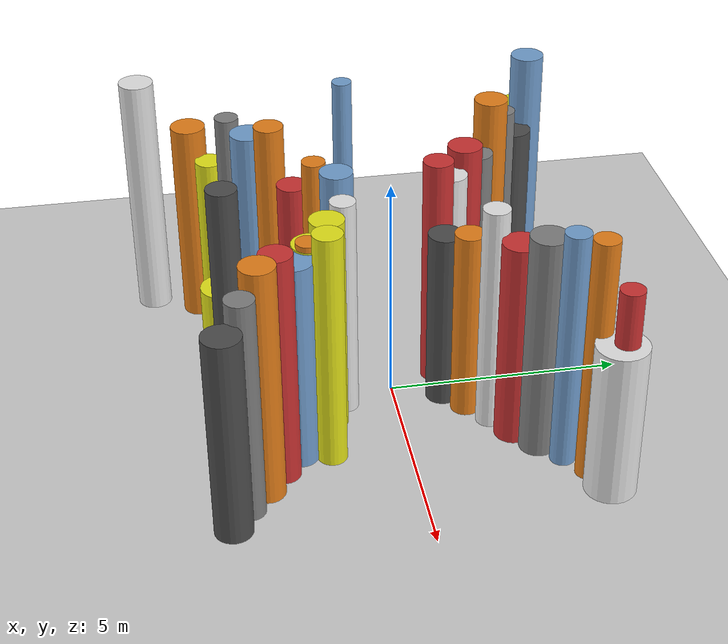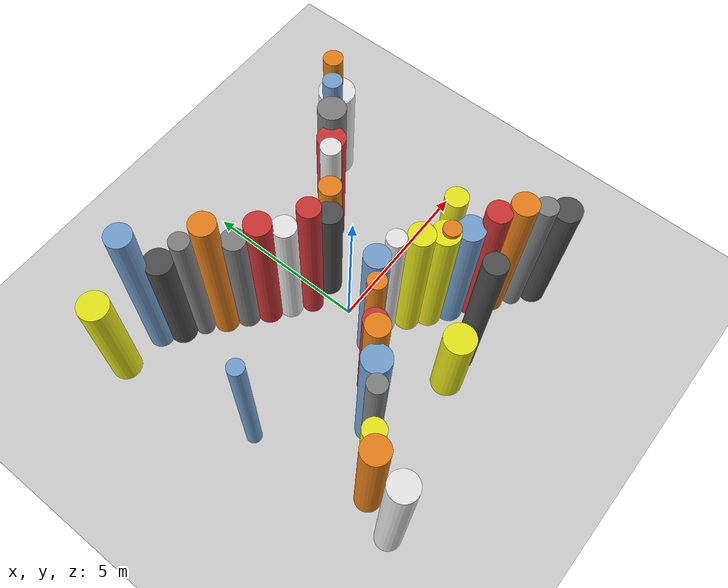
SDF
<?xml version='1.0'?>
<sdf version='1.6'>
  <world name='routeA_rl_v1__dense_recovery__rl_train__bottleneck_corridor__000025'>
    <!-- Sun light -->
    <light name='sun' type='directional'>
      <cast_shadows>1</cast_shadows>
      <pose>0 0 10 0 0 0</pose>
      <diffuse>0.8 0.8 0.8 1</diffuse>
      <specular>0.2 0.2 0.2 1</specular>
      <attenuation>
        <range>1000</range>
        <constant>0.9</constant>
        <linear>0.01</linear>
        <quadratic>0.001</quadratic>
      </attenuation>
      <direction>-0.5 0.1 -0.9</direction>
    </light>

    <!-- Ground plane -->
    <model name='ground_plane'>
      <static>1</static>
      <link name='link'>
        <collision name='collision'>
          <geometry>
            <plane>
              <normal>0 0 1</normal>
              <size>100 100</size>
            </plane>
          </geometry>
          <surface>
            <contact>
              <collide_bitmask>65535</collide_bitmask>
              <ode/>
            </contact>
            <friction>
              <ode>
                <mu>100</mu>
                <mu2>50</mu2>
              </ode>
              <torsional><ode/></torsional>
            </friction>
            <bounce/>
          </surface>
          <max_contacts>10</max_contacts>
        </collision>
        <visual name='visual'>
          <cast_shadows>0</cast_shadows>
          <geometry>
            <plane>
              <normal>0 0 1</normal>
              <size>100 100</size>
            </plane>
          </geometry>
          <material>
            <script>
              <uri>file://media/materials/scripts/gazebo.material</uri>
              <n>Gazebo/Grey</n>
            </script>
          </material>
        </visual>
      </link>
    </model>

    <!-- Environment -->
    <magnetic_field>6e-06 2.3e-05 -4.2e-05</magnetic_field>
    <atmosphere type='adiabatic'/>
    <physics name='default_physics' default='0' type='ode'>
      <gravity>0 0 -9.8</gravity>
      <max_step_size>0.004</max_step_size>
      <real_time_factor>1</real_time_factor>
      <real_time_update_rate>250</real_time_update_rate>
    </physics>
    <scene>
      <ambient>0.4 0.4 0.4 1</ambient>
      <background>0.7 0.7 0.7 1</background>
      <shadows>1</shadows>
    </scene>
    <wind/>
    <spherical_coordinates>
      <surface_model>EARTH_WGS84</surface_model>
      <latitude_deg>0</latitude_deg>
      <longitude_deg>0</longitude_deg>
      <elevation>0</elevation>
      <heading_deg>0</heading_deg>
    </spherical_coordinates>

    <!-- ============ OBSTACLES (40) ============ -->
    <model name='funnel_l_0'>
      <static>1</static>
      <link name='link'>
        <visual name='visual'>
          <geometry>
            <cylinder>
              <radius>0.3790</radius>
              <length>4.6965</length>
            </cylinder>
          </geometry>
          <material>
            <script>
              <n>Gazebo/Orange</n>
              <uri>file://media/materials/scripts/gazebo.material</uri>
            </script>
            <ambient>0.9 0.5 0.1 1</ambient>
          </material>
        </visual>
        <collision name='collision'>
          <geometry>
            <cylinder>
              <radius>0.3790</radius>
              <length>4.6965</length>
            </cylinder>
          </geometry>
          <max_contacts>10</max_contacts>
          <surface>
            <contact><ode/></contact>
            <bounce/>
            <friction>
              <ode><mu>1</mu><mu2>1</mu2></ode>
              <torsional><ode/></torsional>
            </friction>
          </surface>
        </collision>
      </link>
      <pose>-4.0000 -3.8000 2.3482 0 0 0.0000</pose>
    </model>

    <model name='funnel_r_0'>
      <static>1</static>
      <link name='link'>
        <visual name='visual'>
          <geometry>
            <cylinder>
              <radius>0.3585</radius>
              <length>5.7826</length>
            </cylinder>
          </geometry>
          <material>
            <script>
              <n>Gazebo/Blue</n>
              <uri>file://media/materials/scripts/gazebo.material</uri>
            </script>
            <ambient>0.447 0.624 0.812 1</ambient>
          </material>
        </visual>
        <collision name='collision'>
          <geometry>
            <cylinder>
              <radius>0.3585</radius>
              <length>5.7826</length>
            </cylinder>
          </geometry>
          <max_contacts>10</max_contacts>
          <surface>
            <contact><ode/></contact>
            <bounce/>
            <friction>
              <ode><mu>1</mu><mu2>1</mu2></ode>
              <torsional><ode/></torsional>
            </friction>
          </surface>
        </collision>
      </link>
      <pose>-4.0000 3.8000 2.8913 0 0 0.0000</pose>
    </model>

    <model name='funnel_l_1'>
      <static>1</static>
      <link name='link'>
        <visual name='visual'>
          <geometry>
            <cylinder>
              <radius>0.3134</radius>
              <length>4.0814</length>
            </cylinder>
          </geometry>
          <material>
            <script>
              <n>Gazebo/Yellow</n>
              <uri>file://media/materials/scripts/gazebo.material</uri>
            </script>
            <ambient>0.9 0.9 0.1 1</ambient>
          </material>
        </visual>
        <collision name='collision'>
          <geometry>
            <cylinder>
              <radius>0.3134</radius>
              <length>4.0814</length>
            </cylinder>
          </geometry>
          <max_contacts>10</max_contacts>
          <surface>
            <contact><ode/></contact>
            <bounce/>
            <friction>
              <ode><mu>1</mu><mu2>1</mu2></ode>
              <torsional><ode/></torsional>
            </friction>
          </surface>
        </collision>
      </link>
      <pose>-3.4857 -3.4071 2.0407 0 0 0.0000</pose>
    </model>

    <model name='funnel_r_1'>
      <static>1</static>
      <link name='link'>
        <visual name='visual'>
          <geometry>
            <cylinder>
              <radius>0.3964</radius>
              <length>4.2310</length>
            </cylinder>
          </geometry>
          <material>
            <script>
              <n>Gazebo/DarkGrey</n>
              <uri>file://media/materials/scripts/gazebo.material</uri>
            </script>
            <ambient>0.3 0.3 0.3 1</ambient>
          </material>
        </visual>
        <collision name='collision'>
          <geometry>
            <cylinder>
              <radius>0.3964</radius>
              <length>4.2310</length>
            </cylinder>
          </geometry>
          <max_contacts>10</max_contacts>
          <surface>
            <contact><ode/></contact>
            <bounce/>
            <friction>
              <ode><mu>1</mu><mu2>1</mu2></ode>
              <torsional><ode/></torsional>
            </friction>
          </surface>
        </collision>
      </link>
      <pose>-3.4857 3.4071 2.1155 0 0 0.0000</pose>
    </model>

    <model name='funnel_l_2'>
      <static>1</static>
      <link name='link'>
        <visual name='visual'>
          <geometry>
            <cylinder>
              <radius>0.2540</radius>
              <length>5.3470</length>
            </cylinder>
          </geometry>
          <material>
            <script>
              <n>Gazebo/Grey</n>
              <uri>file://media/materials/scripts/gazebo.material</uri>
            </script>
            <ambient>0.5 0.5 0.5 1</ambient>
          </material>
        </visual>
        <collision name='collision'>
          <geometry>
            <cylinder>
              <radius>0.2540</radius>
              <length>5.3470</length>
            </cylinder>
          </geometry>
          <max_contacts>10</max_contacts>
          <surface>
            <contact><ode/></contact>
            <bounce/>
            <friction>
              <ode><mu>1</mu><mu2>1</mu2></ode>
              <torsional><ode/></torsional>
            </friction>
          </surface>
        </collision>
      </link>
      <pose>-2.9714 -3.0143 2.6735 0 0 0.0000</pose>
    </model>

    <model name='funnel_r_2'>
      <static>1</static>
      <link name='link'>
        <visual name='visual'>
          <geometry>
            <cylinder>
              <radius>0.2756</radius>
              <length>4.9847</length>
            </cylinder>
          </geometry>
          <material>
            <script>
              <n>Gazebo/Grey</n>
              <uri>file://media/materials/scripts/gazebo.material</uri>
            </script>
            <ambient>0.5 0.5 0.5 1</ambient>
          </material>
        </visual>
        <collision name='collision'>
          <geometry>
            <cylinder>
              <radius>0.2756</radius>
              <length>4.9847</length>
            </cylinder>
          </geometry>
          <max_contacts>10</max_contacts>
          <surface>
            <contact><ode/></contact>
            <bounce/>
            <friction>
              <ode><mu>1</mu><mu2>1</mu2></ode>
              <torsional><ode/></torsional>
            </friction>
          </surface>
        </collision>
      </link>
      <pose>-2.9714 3.0143 2.4923 0 0 0.0000</pose>
    </model>

    <model name='funnel_l_3'>
      <static>1</static>
      <link name='link'>
        <visual name='visual'>
          <geometry>
            <cylinder>
              <radius>0.3832</radius>
              <length>5.2040</length>
            </cylinder>
          </geometry>
          <material>
            <script>
              <n>Gazebo/Blue</n>
              <uri>file://media/materials/scripts/gazebo.material</uri>
            </script>
            <ambient>0.447 0.624 0.812 1</ambient>
          </material>
        </visual>
        <collision name='collision'>
          <geometry>
            <cylinder>
              <radius>0.3832</radius>
              <length>5.2040</length>
            </cylinder>
          </geometry>
          <max_contacts>10</max_contacts>
          <surface>
            <contact><ode/></contact>
            <bounce/>
            <friction>
              <ode><mu>1</mu><mu2>1</mu2></ode>
              <torsional><ode/></torsional>
            </friction>
          </surface>
        </collision>
      </link>
      <pose>-2.4571 -2.6214 2.6020 0 0 0.0000</pose>
    </model>

    <model name='funnel_r_3'>
      <static>1</static>
      <link name='link'>
        <visual name='visual'>
          <geometry>
            <cylinder>
              <radius>0.3593</radius>
              <length>5.5386</length>
            </cylinder>
          </geometry>
          <material>
            <script>
              <n>Gazebo/Orange</n>
              <uri>file://media/materials/scripts/gazebo.material</uri>
            </script>
            <ambient>0.9 0.5 0.1 1</ambient>
          </material>
        </visual>
        <collision name='collision'>
          <geometry>
            <cylinder>
              <radius>0.3593</radius>
              <length>5.5386</length>
            </cylinder>
          </geometry>
          <max_contacts>10</max_contacts>
          <surface>
            <contact><ode/></contact>
            <bounce/>
            <friction>
              <ode><mu>1</mu><mu2>1</mu2></ode>
              <torsional><ode/></torsional>
            </friction>
          </surface>
        </collision>
      </link>
      <pose>-2.4571 2.6214 2.7693 0 0 0.0000</pose>
    </model>

    <model name='funnel_l_4'>
      <static>1</static>
      <link name='link'>
        <visual name='visual'>
          <geometry>
            <cylinder>
              <radius>0.3141</radius>
              <length>5.5861</length>
            </cylinder>
          </geometry>
          <material>
            <script>
              <n>Gazebo/Orange</n>
              <uri>file://media/materials/scripts/gazebo.material</uri>
            </script>
            <ambient>0.9 0.5 0.1 1</ambient>
          </material>
        </visual>
        <collision name='collision'>
          <geometry>
            <cylinder>
              <radius>0.3141</radius>
              <length>5.5861</length>
            </cylinder>
          </geometry>
          <max_contacts>10</max_contacts>
          <surface>
            <contact><ode/></contact>
            <bounce/>
            <friction>
              <ode><mu>1</mu><mu2>1</mu2></ode>
              <torsional><ode/></torsional>
            </friction>
          </surface>
        </collision>
      </link>
      <pose>-1.9429 -2.2286 2.7931 0 0 0.0000</pose>
    </model>

    <model name='funnel_r_4'>
      <static>1</static>
      <link name='link'>
        <visual name='visual'>
          <geometry>
            <cylinder>
              <radius>0.3397</radius>
              <length>4.5442</length>
            </cylinder>
          </geometry>
          <material>
            <script>
              <n>Gazebo/Grey</n>
              <uri>file://media/materials/scripts/gazebo.material</uri>
            </script>
            <ambient>0.5 0.5 0.5 1</ambient>
          </material>
        </visual>
        <collision name='collision'>
          <geometry>
            <cylinder>
              <radius>0.3397</radius>
              <length>4.5442</length>
            </cylinder>
          </geometry>
          <max_contacts>10</max_contacts>
          <surface>
            <contact><ode/></contact>
            <bounce/>
            <friction>
              <ode><mu>1</mu><mu2>1</mu2></ode>
              <torsional><ode/></torsional>
            </friction>
          </surface>
        </collision>
      </link>
      <pose>-1.9429 2.2286 2.2721 0 0 0.0000</pose>
    </model>

    <model name='funnel_l_5'>
      <static>1</static>
      <link name='link'>
        <visual name='visual'>
          <geometry>
            <cylinder>
              <radius>0.3288</radius>
              <length>4.4552</length>
            </cylinder>
          </geometry>
          <material>
            <script>
              <n>Gazebo/Red</n>
              <uri>file://media/materials/scripts/gazebo.material</uri>
            </script>
            <ambient>0.8 0.2 0.2 1</ambient>
          </material>
        </visual>
        <collision name='collision'>
          <geometry>
            <cylinder>
              <radius>0.3288</radius>
              <length>4.4552</length>
            </cylinder>
          </geometry>
          <max_contacts>10</max_contacts>
          <surface>
            <contact><ode/></contact>
            <bounce/>
            <friction>
              <ode><mu>1</mu><mu2>1</mu2></ode>
              <torsional><ode/></torsional>
            </friction>
          </surface>
        </collision>
      </link>
      <pose>-1.4286 -1.8357 2.2276 0 0 0.0000</pose>
    </model>

    <model name='funnel_r_5'>
      <static>1</static>
      <link name='link'>
        <visual name='visual'>
          <geometry>
            <cylinder>
              <radius>0.3689</radius>
              <length>5.0303</length>
            </cylinder>
          </geometry>
          <material>
            <script>
              <n>Gazebo/Red</n>
              <uri>file://media/materials/scripts/gazebo.material</uri>
            </script>
            <ambient>0.8 0.2 0.2 1</ambient>
          </material>
        </visual>
        <collision name='collision'>
          <geometry>
            <cylinder>
              <radius>0.3689</radius>
              <length>5.0303</length>
            </cylinder>
          </geometry>
          <max_contacts>10</max_contacts>
          <surface>
            <contact><ode/></contact>
            <bounce/>
            <friction>
              <ode><mu>1</mu><mu2>1</mu2></ode>
              <torsional><ode/></torsional>
            </friction>
          </surface>
        </collision>
      </link>
      <pose>-1.4286 1.8357 2.5151 0 0 0.0000</pose>
    </model>

    <model name='funnel_l_6'>
      <static>1</static>
      <link name='link'>
        <visual name='visual'>
          <geometry>
            <cylinder>
              <radius>0.2504</radius>
              <length>5.2274</length>
            </cylinder>
          </geometry>
          <material>
            <script>
              <n>Gazebo/Orange</n>
              <uri>file://media/materials/scripts/gazebo.material</uri>
            </script>
            <ambient>0.9 0.5 0.1 1</ambient>
          </material>
        </visual>
        <collision name='collision'>
          <geometry>
            <cylinder>
              <radius>0.2504</radius>
              <length>5.2274</length>
            </cylinder>
          </geometry>
          <max_contacts>10</max_contacts>
          <surface>
            <contact><ode/></contact>
            <bounce/>
            <friction>
              <ode><mu>1</mu><mu2>1</mu2></ode>
              <torsional><ode/></torsional>
            </friction>
          </surface>
        </collision>
      </link>
      <pose>-0.9143 -1.4429 2.6137 0 0 0.0000</pose>
    </model>

    <model name='funnel_r_6'>
      <static>1</static>
      <link name='link'>
        <visual name='visual'>
          <geometry>
            <cylinder>
              <radius>0.3382</radius>
              <length>4.6506</length>
            </cylinder>
          </geometry>
          <material>
            <script>
              <n>Gazebo/White</n>
              <uri>file://media/materials/scripts/gazebo.material</uri>
            </script>
            <ambient>0.9 0.9 0.9 1</ambient>
          </material>
        </visual>
        <collision name='collision'>
          <geometry>
            <cylinder>
              <radius>0.3382</radius>
              <length>4.6506</length>
            </cylinder>
          </geometry>
          <max_contacts>10</max_contacts>
          <surface>
            <contact><ode/></contact>
            <bounce/>
            <friction>
              <ode><mu>1</mu><mu2>1</mu2></ode>
              <torsional><ode/></torsional>
            </friction>
          </surface>
        </collision>
      </link>
      <pose>-0.9143 1.4429 2.3253 0 0 0.0000</pose>
    </model>

    <model name='funnel_l_7'>
      <static>1</static>
      <link name='link'>
        <visual name='visual'>
          <geometry>
            <cylinder>
              <radius>0.3472</radius>
              <length>5.2348</length>
            </cylinder>
          </geometry>
          <material>
            <script>
              <n>Gazebo/Blue</n>
              <uri>file://media/materials/scripts/gazebo.material</uri>
            </script>
            <ambient>0.447 0.624 0.812 1</ambient>
          </material>
        </visual>
        <collision name='collision'>
          <geometry>
            <cylinder>
              <radius>0.3472</radius>
              <length>5.2348</length>
            </cylinder>
          </geometry>
          <max_contacts>10</max_contacts>
          <surface>
            <contact><ode/></contact>
            <bounce/>
            <friction>
              <ode><mu>1</mu><mu2>1</mu2></ode>
              <torsional><ode/></torsional>
            </friction>
          </surface>
        </collision>
      </link>
      <pose>-0.4000 -1.0500 2.6174 0 0 0.0000</pose>
    </model>

    <model name='funnel_r_7'>
      <static>1</static>
      <link name='link'>
        <visual name='visual'>
          <geometry>
            <cylinder>
              <radius>0.3179</radius>
              <length>5.2830</length>
            </cylinder>
          </geometry>
          <material>
            <script>
              <n>Gazebo/Red</n>
              <uri>file://media/materials/scripts/gazebo.material</uri>
            </script>
            <ambient>0.8 0.2 0.2 1</ambient>
          </material>
        </visual>
        <collision name='collision'>
          <geometry>
            <cylinder>
              <radius>0.3179</radius>
              <length>5.2830</length>
            </cylinder>
          </geometry>
          <max_contacts>10</max_contacts>
          <surface>
            <contact><ode/></contact>
            <bounce/>
            <friction>
              <ode><mu>1</mu><mu2>1</mu2></ode>
              <torsional><ode/></torsional>
            </friction>
          </surface>
        </collision>
      </link>
      <pose>-0.4000 1.0500 2.6415 0 0 0.0000</pose>
    </model>

    <model name='funnel_out_l_0'>
      <static>1</static>
      <link name='link'>
        <visual name='visual'>
          <geometry>
            <cylinder>
              <radius>0.2708</radius>
              <length>5.0003</length>
            </cylinder>
          </geometry>
          <material>
            <script>
              <n>Gazebo/White</n>
              <uri>file://media/materials/scripts/gazebo.material</uri>
            </script>
            <ambient>0.9 0.9 0.9 1</ambient>
          </material>
        </visual>
        <collision name='collision'>
          <geometry>
            <cylinder>
              <radius>0.2708</radius>
              <length>5.0003</length>
            </cylinder>
          </geometry>
          <max_contacts>10</max_contacts>
          <surface>
            <contact><ode/></contact>
            <bounce/>
            <friction>
              <ode><mu>1</mu><mu2>1</mu2></ode>
              <torsional><ode/></torsional>
            </friction>
          </surface>
        </collision>
      </link>
      <pose>0.4000 -1.0500 2.5002 0 0 0.0000</pose>
    </model>

    <model name='funnel_out_r_0'>
      <static>1</static>
      <link name='link'>
        <visual name='visual'>
          <geometry>
            <cylinder>
              <radius>0.3613</radius>
              <length>4.0342</length>
            </cylinder>
          </geometry>
          <material>
            <script>
              <n>Gazebo/DarkGrey</n>
              <uri>file://media/materials/scripts/gazebo.material</uri>
            </script>
            <ambient>0.3 0.3 0.3 1</ambient>
          </material>
        </visual>
        <collision name='collision'>
          <geometry>
            <cylinder>
              <radius>0.3613</radius>
              <length>4.0342</length>
            </cylinder>
          </geometry>
          <max_contacts>10</max_contacts>
          <surface>
            <contact><ode/></contact>
            <bounce/>
            <friction>
              <ode><mu>1</mu><mu2>1</mu2></ode>
              <torsional><ode/></torsional>
            </friction>
          </surface>
        </collision>
      </link>
      <pose>0.4000 1.0500 2.0171 0 0 0.0000</pose>
    </model>

    <model name='funnel_out_l_1'>
      <static>1</static>
      <link name='link'>
        <visual name='visual'>
          <geometry>
            <cylinder>
              <radius>0.3602</radius>
              <length>4.9245</length>
            </cylinder>
          </geometry>
          <material>
            <script>
              <n>Gazebo/Yellow</n>
              <uri>file://media/materials/scripts/gazebo.material</uri>
            </script>
            <ambient>0.9 0.9 0.1 1</ambient>
          </material>
        </visual>
        <collision name='collision'>
          <geometry>
            <cylinder>
              <radius>0.3602</radius>
              <length>4.9245</length>
            </cylinder>
          </geometry>
          <max_contacts>10</max_contacts>
          <surface>
            <contact><ode/></contact>
            <bounce/>
            <friction>
              <ode><mu>1</mu><mu2>1</mu2></ode>
              <torsional><ode/></torsional>
            </friction>
          </surface>
        </collision>
      </link>
      <pose>0.9143 -1.4429 2.4623 0 0 0.0000</pose>
    </model>

    <model name='funnel_out_r_1'>
      <static>1</static>
      <link name='link'>
        <visual name='visual'>
          <geometry>
            <cylinder>
              <radius>0.3187</radius>
              <length>4.3070</length>
            </cylinder>
          </geometry>
          <material>
            <script>
              <n>Gazebo/Orange</n>
              <uri>file://media/materials/scripts/gazebo.material</uri>
            </script>
            <ambient>0.9 0.5 0.1 1</ambient>
          </material>
        </visual>
        <collision name='collision'>
          <geometry>
            <cylinder>
              <radius>0.3187</radius>
              <length>4.3070</length>
            </cylinder>
          </geometry>
          <max_contacts>10</max_contacts>
          <surface>
            <contact><ode/></contact>
            <bounce/>
            <friction>
              <ode><mu>1</mu><mu2>1</mu2></ode>
              <torsional><ode/></torsional>
            </friction>
          </surface>
        </collision>
      </link>
      <pose>0.9143 1.4429 2.1535 0 0 0.0000</pose>
    </model>

    <model name='funnel_out_l_2'>
      <static>1</static>
      <link name='link'>
        <visual name='visual'>
          <geometry>
            <cylinder>
              <radius>0.3906</radius>
              <length>4.7263</length>
            </cylinder>
          </geometry>
          <material>
            <script>
              <n>Gazebo/Yellow</n>
              <uri>file://media/materials/scripts/gazebo.material</uri>
            </script>
            <ambient>0.9 0.9 0.1 1</ambient>
          </material>
        </visual>
        <collision name='collision'>
          <geometry>
            <cylinder>
              <radius>0.3906</radius>
              <length>4.7263</length>
            </cylinder>
          </geometry>
          <max_contacts>10</max_contacts>
          <surface>
            <contact><ode/></contact>
            <bounce/>
            <friction>
              <ode><mu>1</mu><mu2>1</mu2></ode>
              <torsional><ode/></torsional>
            </friction>
          </surface>
        </collision>
      </link>
      <pose>1.4286 -1.8357 2.3632 0 0 0.0000</pose>
    </model>

    <model name='funnel_out_r_2'>
      <static>1</static>
      <link name='link'>
        <visual name='visual'>
          <geometry>
            <cylinder>
              <radius>0.2837</radius>
              <length>5.1218</length>
            </cylinder>
          </geometry>
          <material>
            <script>
              <n>Gazebo/White</n>
              <uri>file://media/materials/scripts/gazebo.material</uri>
            </script>
            <ambient>0.9 0.9 0.9 1</ambient>
          </material>
        </visual>
        <collision name='collision'>
          <geometry>
            <cylinder>
              <radius>0.2837</radius>
              <length>5.1218</length>
            </cylinder>
          </geometry>
          <max_contacts>10</max_contacts>
          <surface>
            <contact><ode/></contact>
            <bounce/>
            <friction>
              <ode><mu>1</mu><mu2>1</mu2></ode>
              <torsional><ode/></torsional>
            </friction>
          </surface>
        </collision>
      </link>
      <pose>1.4286 1.8357 2.5609 0 0 0.0000</pose>
    </model>

    <model name='funnel_out_l_3'>
      <static>1</static>
      <link name='link'>
        <visual name='visual'>
          <geometry>
            <cylinder>
              <radius>0.3933</radius>
              <length>4.6881</length>
            </cylinder>
          </geometry>
          <material>
            <script>
              <n>Gazebo/Blue</n>
              <uri>file://media/materials/scripts/gazebo.material</uri>
            </script>
            <ambient>0.447 0.624 0.812 1</ambient>
          </material>
        </visual>
        <collision name='collision'>
          <geometry>
            <cylinder>
              <radius>0.3933</radius>
              <length>4.6881</length>
            </cylinder>
          </geometry>
          <max_contacts>10</max_contacts>
          <surface>
            <contact><ode/></contact>
            <bounce/>
            <friction>
              <ode><mu>1</mu><mu2>1</mu2></ode>
              <torsional><ode/></torsional>
            </friction>
          </surface>
        </collision>
      </link>
      <pose>1.9429 -2.2286 2.3441 0 0 0.0000</pose>
    </model>

    <model name='funnel_out_r_3'>
      <static>1</static>
      <link name='link'>
        <visual name='visual'>
          <geometry>
            <cylinder>
              <radius>0.3990</radius>
              <length>4.6229</length>
            </cylinder>
          </geometry>
          <material>
            <script>
              <n>Gazebo/Red</n>
              <uri>file://media/materials/scripts/gazebo.material</uri>
            </script>
            <ambient>0.8 0.2 0.2 1</ambient>
          </material>
        </visual>
        <collision name='collision'>
          <geometry>
            <cylinder>
              <radius>0.3990</radius>
              <length>4.6229</length>
            </cylinder>
          </geometry>
          <max_contacts>10</max_contacts>
          <surface>
            <contact><ode/></contact>
            <bounce/>
            <friction>
              <ode><mu>1</mu><mu2>1</mu2></ode>
              <torsional><ode/></torsional>
            </friction>
          </surface>
        </collision>
      </link>
      <pose>1.9429 2.2286 2.3114 0 0 0.0000</pose>
    </model>

    <model name='funnel_out_l_4'>
      <static>1</static>
      <link name='link'>
        <visual name='visual'>
          <geometry>
            <cylinder>
              <radius>0.3388</radius>
              <length>5.2022</length>
            </cylinder>
          </geometry>
          <material>
            <script>
              <n>Gazebo/Red</n>
              <uri>file://media/materials/scripts/gazebo.material</uri>
            </script>
            <ambient>0.8 0.2 0.2 1</ambient>
          </material>
        </visual>
        <collision name='collision'>
          <geometry>
            <cylinder>
              <radius>0.3388</radius>
              <length>5.2022</length>
            </cylinder>
          </geometry>
          <max_contacts>10</max_contacts>
          <surface>
            <contact><ode/></contact>
            <bounce/>
            <friction>
              <ode><mu>1</mu><mu2>1</mu2></ode>
              <torsional><ode/></torsional>
            </friction>
          </surface>
        </collision>
      </link>
      <pose>2.4571 -2.6214 2.6011 0 0 0.0000</pose>
    </model>

    <model name='funnel_out_r_4'>
      <static>1</static>
      <link name='link'>
        <visual name='visual'>
          <geometry>
            <cylinder>
              <radius>0.3915</radius>
              <length>5.0312</length>
            </cylinder>
          </geometry>
          <material>
            <script>
              <n>Gazebo/Grey</n>
              <uri>file://media/materials/scripts/gazebo.material</uri>
            </script>
            <ambient>0.5 0.5 0.5 1</ambient>
          </material>
        </visual>
        <collision name='collision'>
          <geometry>
            <cylinder>
              <radius>0.3915</radius>
              <length>5.0312</length>
            </cylinder>
          </geometry>
          <max_contacts>10</max_contacts>
          <surface>
            <contact><ode/></contact>
            <bounce/>
            <friction>
              <ode><mu>1</mu><mu2>1</mu2></ode>
              <torsional><ode/></torsional>
            </friction>
          </surface>
        </collision>
      </link>
      <pose>2.4571 2.6214 2.5156 0 0 0.0000</pose>
    </model>

    <model name='funnel_out_l_5'>
      <static>1</static>
      <link name='link'>
        <visual name='visual'>
          <geometry>
            <cylinder>
              <radius>0.3593</radius>
              <length>5.3063</length>
            </cylinder>
          </geometry>
          <material>
            <script>
              <n>Gazebo/Orange</n>
              <uri>file://media/materials/scripts/gazebo.material</uri>
            </script>
            <ambient>0.9 0.5 0.1 1</ambient>
          </material>
        </visual>
        <collision name='collision'>
          <geometry>
            <cylinder>
              <radius>0.3593</radius>
              <length>5.3063</length>
            </cylinder>
          </geometry>
          <max_contacts>10</max_contacts>
          <surface>
            <contact><ode/></contact>
            <bounce/>
            <friction>
              <ode><mu>1</mu><mu2>1</mu2></ode>
              <torsional><ode/></torsional>
            </friction>
          </surface>
        </collision>
      </link>
      <pose>2.9714 -3.0143 2.6531 0 0 0.0000</pose>
    </model>

    <model name='funnel_out_r_5'>
      <static>1</static>
      <link name='link'>
        <visual name='visual'>
          <geometry>
            <cylinder>
              <radius>0.2659</radius>
              <length>5.3602</length>
            </cylinder>
          </geometry>
          <material>
            <script>
              <n>Gazebo/Blue</n>
              <uri>file://media/materials/scripts/gazebo.material</uri>
            </script>
            <ambient>0.447 0.624 0.812 1</ambient>
          </material>
        </visual>
        <collision name='collision'>
          <geometry>
            <cylinder>
              <radius>0.2659</radius>
              <length>5.3602</length>
            </cylinder>
          </geometry>
          <max_contacts>10</max_contacts>
          <surface>
            <contact><ode/></contact>
            <bounce/>
            <friction>
              <ode><mu>1</mu><mu2>1</mu2></ode>
              <torsional><ode/></torsional>
            </friction>
          </surface>
        </collision>
      </link>
      <pose>2.9714 3.0143 2.6801 0 0 0.0000</pose>
    </model>

    <model name='funnel_out_l_6'>
      <static>1</static>
      <link name='link'>
        <visual name='visual'>
          <geometry>
            <cylinder>
              <radius>0.2968</radius>
              <length>4.9545</length>
            </cylinder>
          </geometry>
          <material>
            <script>
              <n>Gazebo/Grey</n>
              <uri>file://media/materials/scripts/gazebo.material</uri>
            </script>
            <ambient>0.5 0.5 0.5 1</ambient>
          </material>
        </visual>
        <collision name='collision'>
          <geometry>
            <cylinder>
              <radius>0.2968</radius>
              <length>4.9545</length>
            </cylinder>
          </geometry>
          <max_contacts>10</max_contacts>
          <surface>
            <contact><ode/></contact>
            <bounce/>
            <friction>
              <ode><mu>1</mu><mu2>1</mu2></ode>
              <torsional><ode/></torsional>
            </friction>
          </surface>
        </collision>
      </link>
      <pose>3.4857 -3.4071 2.4772 0 0 0.0000</pose>
    </model>

    <model name='funnel_out_r_6'>
      <static>1</static>
      <link name='link'>
        <visual name='visual'>
          <geometry>
            <cylinder>
              <radius>0.2692</radius>
              <length>5.4844</length>
            </cylinder>
          </geometry>
          <material>
            <script>
              <n>Gazebo/Orange</n>
              <uri>file://media/materials/scripts/gazebo.material</uri>
            </script>
            <ambient>0.9 0.5 0.1 1</ambient>
          </material>
        </visual>
        <collision name='collision'>
          <geometry>
            <cylinder>
              <radius>0.2692</radius>
              <length>5.4844</length>
            </cylinder>
          </geometry>
          <max_contacts>10</max_contacts>
          <surface>
            <contact><ode/></contact>
            <bounce/>
            <friction>
              <ode><mu>1</mu><mu2>1</mu2></ode>
              <torsional><ode/></torsional>
            </friction>
          </surface>
        </collision>
      </link>
      <pose>3.4857 3.4071 2.7422 0 0 0.0000</pose>
    </model>

    <model name='funnel_out_l_7'>
      <static>1</static>
      <link name='link'>
        <visual name='visual'>
          <geometry>
            <cylinder>
              <radius>0.3892</radius>
              <length>4.5451</length>
            </cylinder>
          </geometry>
          <material>
            <script>
              <n>Gazebo/DarkGrey</n>
              <uri>file://media/materials/scripts/gazebo.material</uri>
            </script>
            <ambient>0.3 0.3 0.3 1</ambient>
          </material>
        </visual>
        <collision name='collision'>
          <geometry>
            <cylinder>
              <radius>0.3892</radius>
              <length>4.5451</length>
            </cylinder>
          </geometry>
          <max_contacts>10</max_contacts>
          <surface>
            <contact><ode/></contact>
            <bounce/>
            <friction>
              <ode><mu>1</mu><mu2>1</mu2></ode>
              <torsional><ode/></torsional>
            </friction>
          </surface>
        </collision>
      </link>
      <pose>4.0000 -3.8000 2.2725 0 0 0.0000</pose>
    </model>

    <model name='funnel_out_r_7'>
      <static>1</static>
      <link name='link'>
        <visual name='visual'>
          <geometry>
            <cylinder>
              <radius>0.2517</radius>
              <length>4.6604</length>
            </cylinder>
          </geometry>
          <material>
            <script>
              <n>Gazebo/Red</n>
              <uri>file://media/materials/scripts/gazebo.material</uri>
            </script>
            <ambient>0.8 0.2 0.2 1</ambient>
          </material>
        </visual>
        <collision name='collision'>
          <geometry>
            <cylinder>
              <radius>0.2517</radius>
              <length>4.6604</length>
            </cylinder>
          </geometry>
          <max_contacts>10</max_contacts>
          <surface>
            <contact><ode/></contact>
            <bounce/>
            <friction>
              <ode><mu>1</mu><mu2>1</mu2></ode>
              <torsional><ode/></torsional>
            </friction>
          </surface>
        </collision>
      </link>
      <pose>4.0000 3.8000 2.3302 0 0 0.0000</pose>
    </model>

    <model name='bn_scatter_0'>
      <static>1</static>
      <link name='link'>
        <visual name='visual'>
          <geometry>
            <cylinder>
              <radius>0.2225</radius>
              <length>5.1957</length>
            </cylinder>
          </geometry>
          <material>
            <script>
              <n>Gazebo/Blue</n>
              <uri>file://media/materials/scripts/gazebo.material</uri>
            </script>
            <ambient>0.447 0.624 0.812 1</ambient>
          </material>
        </visual>
        <collision name='collision'>
          <geometry>
            <cylinder>
              <radius>0.2225</radius>
              <length>5.1957</length>
            </cylinder>
          </geometry>
          <max_contacts>10</max_contacts>
          <surface>
            <contact><ode/></contact>
            <bounce/>
            <friction>
              <ode><mu>1</mu><mu2>1</mu2></ode>
              <torsional><ode/></torsional>
            </friction>
          </surface>
        </collision>
      </link>
      <pose>-4.5895 -0.2918 2.5978 0 0 0.0000</pose>
    </model>

    <model name='bn_scatter_1'>
      <static>1</static>
      <link name='link'>
        <visual name='visual'>
          <geometry>
            <cylinder>
              <radius>0.4305</radius>
              <length>3.9738</length>
            </cylinder>
          </geometry>
          <material>
            <script>
              <n>Gazebo/Yellow</n>
              <uri>file://media/materials/scripts/gazebo.material</uri>
            </script>
            <ambient>0.9 0.9 0.1 1</ambient>
          </material>
        </visual>
        <collision name='collision'>
          <geometry>
            <cylinder>
              <radius>0.4305</radius>
              <length>3.9738</length>
            </cylinder>
          </geometry>
          <max_contacts>10</max_contacts>
          <surface>
            <contact><ode/></contact>
            <bounce/>
            <friction>
              <ode><mu>1</mu><mu2>1</mu2></ode>
              <torsional><ode/></torsional>
            </friction>
          </surface>
        </collision>
      </link>
      <pose>-5.3068 3.9313 1.9869 0 0 0.0000</pose>
    </model>

    <model name='bn_scatter_2'>
      <static>1</static>
      <link name='link'>
        <visual name='visual'>
          <geometry>
            <cylinder>
              <radius>0.2424</radius>
              <length>4.8467</length>
            </cylinder>
          </geometry>
          <material>
            <script>
              <n>Gazebo/Orange</n>
              <uri>file://media/materials/scripts/gazebo.material</uri>
            </script>
            <ambient>0.9 0.5 0.1 1</ambient>
          </material>
        </visual>
        <collision name='collision'>
          <geometry>
            <cylinder>
              <radius>0.2424</radius>
              <length>4.8467</length>
            </cylinder>
          </geometry>
          <max_contacts>10</max_contacts>
          <surface>
            <contact><ode/></contact>
            <bounce/>
            <friction>
              <ode><mu>1</mu><mu2>1</mu2></ode>
              <torsional><ode/></torsional>
            </friction>
          </surface>
        </collision>
      </link>
      <pose>1.5540 -1.9058 2.4233 0 0 0.0000</pose>
    </model>

    <model name='bn_scatter_3'>
      <static>1</static>
      <link name='link'>
        <visual name='visual'>
          <geometry>
            <cylinder>
              <radius>0.5371</radius>
              <length>3.4407</length>
            </cylinder>
          </geometry>
          <material>
            <script>
              <n>Gazebo/White</n>
              <uri>file://media/materials/scripts/gazebo.material</uri>
            </script>
            <ambient>0.9 0.9 0.9 1</ambient>
          </material>
        </visual>
        <collision name='collision'>
          <geometry>
            <cylinder>
              <radius>0.5371</radius>
              <length>3.4407</length>
            </cylinder>
          </geometry>
          <max_contacts>10</max_contacts>
          <surface>
            <contact><ode/></contact>
            <bounce/>
            <friction>
              <ode><mu>1</mu><mu2>1</mu2></ode>
              <torsional><ode/></torsional>
            </friction>
          </surface>
        </collision>
      </link>
      <pose>4.0243 3.7026 1.7204 0 0 0.0000</pose>
    </model>

    <model name='bn_scatter_4'>
      <static>1</static>
      <link name='link'>
        <visual name='visual'>
          <geometry>
            <cylinder>
              <radius>0.3740</radius>
              <length>5.6134</length>
            </cylinder>
          </geometry>
          <material>
            <script>
              <n>Gazebo/White</n>
              <uri>file://media/materials/scripts/gazebo.material</uri>
            </script>
            <ambient>0.9 0.9 0.9 1</ambient>
          </material>
        </visual>
        <collision name='collision'>
          <geometry>
            <cylinder>
              <radius>0.3740</radius>
              <length>5.6134</length>
            </cylinder>
          </geometry>
          <max_contacts>10</max_contacts>
          <surface>
            <contact><ode/></contact>
            <bounce/>
            <friction>
              <ode><mu>1</mu><mu2>1</mu2></ode>
              <torsional><ode/></torsional>
            </friction>
          </surface>
        </collision>
      </link>
      <pose>-4.4736 -4.8269 2.8067 0 0 0.0000</pose>
    </model>

    <model name='bn_scatter_5'>
      <static>1</static>
      <link name='link'>
        <visual name='visual'>
          <geometry>
            <cylinder>
              <radius>0.4526</radius>
              <length>3.0546</length>
            </cylinder>
          </geometry>
          <material>
            <script>
              <n>Gazebo/Yellow</n>
              <uri>file://media/materials/scripts/gazebo.material</uri>
            </script>
            <ambient>0.9 0.9 0.1 1</ambient>
          </material>
        </visual>
        <collision name='collision'>
          <geometry>
            <cylinder>
              <radius>0.4526</radius>
              <length>3.0546</length>
            </cylinder>
          </geometry>
          <max_contacts>10</max_contacts>
          <surface>
            <contact><ode/></contact>
            <bounce/>
            <friction>
              <ode><mu>1</mu><mu2>1</mu2></ode>
              <torsional><ode/></torsional>
            </friction>
          </surface>
        </collision>
      </link>
      <pose>0.0432 -3.4928 1.5273 0 0 0.0000</pose>
    </model>

    <model name='bn_scatter_6'>
      <static>1</static>
      <link name='link'>
        <visual name='visual'>
          <geometry>
            <cylinder>
              <radius>0.3129</radius>
              <length>5.7821</length>
            </cylinder>
          </geometry>
          <material>
            <script>
              <n>Gazebo/DarkGrey</n>
              <uri>file://media/materials/scripts/gazebo.material</uri>
            </script>
            <ambient>0.3 0.3 0.3 1</ambient>
          </material>
        </visual>
        <collision name='collision'>
          <geometry>
            <cylinder>
              <radius>0.3129</radius>
              <length>5.7821</length>
            </cylinder>
          </geometry>
          <max_contacts>10</max_contacts>
          <surface>
            <contact><ode/></contact>
            <bounce/>
            <friction>
              <ode><mu>1</mu><mu2>1</mu2></ode>
              <torsional><ode/></torsional>
            </friction>
          </surface>
        </collision>
      </link>
      <pose>0.8790 -3.4464 2.8911 0 0 0.0000</pose>
    </model>

    <model name='bn_scatter_7'>
      <static>1</static>
      <link name='link'>
        <visual name='visual'>
          <geometry>
            <cylinder>
              <radius>0.3073</radius>
              <length>5.3086</length>
            </cylinder>
          </geometry>
          <material>
            <script>
              <n>Gazebo/Yellow</n>
              <uri>file://media/materials/scripts/gazebo.material</uri>
            </script>
            <ambient>0.9 0.9 0.1 1</ambient>
          </material>
        </visual>
        <collision name='collision'>
          <geometry>
            <cylinder>
              <radius>0.3073</radius>
              <length>5.3086</length>
            </cylinder>
          </geometry>
          <max_contacts>10</max_contacts>
          <surface>
            <contact><ode/></contact>
            <bounce/>
            <friction>
              <ode><mu>1</mu><mu2>1</mu2></ode>
              <torsional><ode/></torsional>
            </friction>
          </surface>
        </collision>
      </link>
      <pose>2.0865 -1.5925 2.6543 0 0 0.0000</pose>
    </model>

    <!-- GUI camera -->
    <gui fullscreen='0'>
      <camera name='user_camera'>
        <pose>-15 0 18 0 0.85 0.15</pose>
        <view_controller>orbit</view_controller>
        <projection_type>perspective</projection_type>
      </camera>
    </gui>
  </world>
</sdf>
